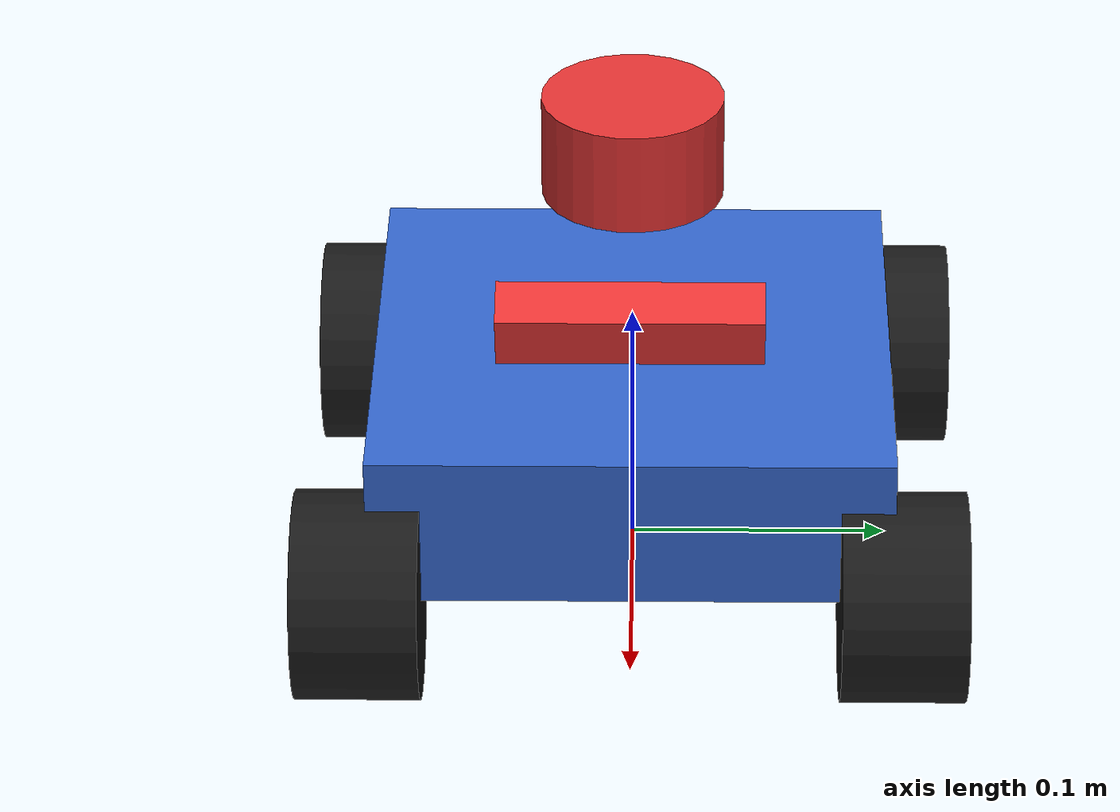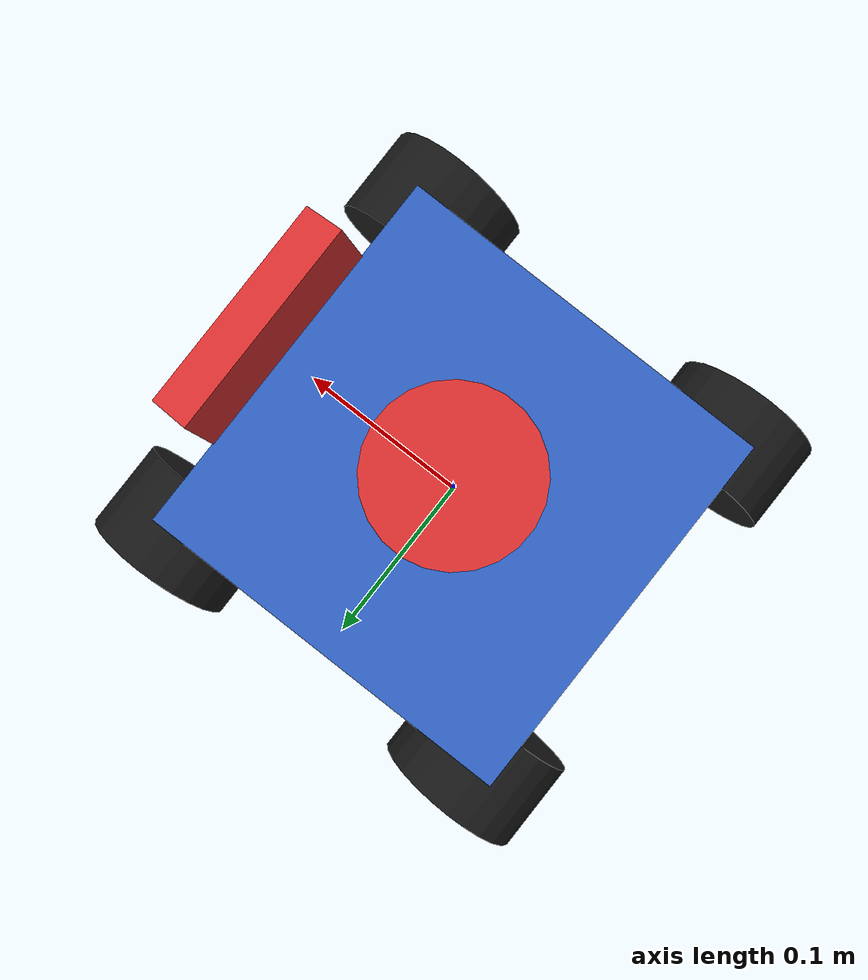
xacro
<?xml version="1.0"?>
<robot name="smart_upcare" xmlns:xacro="http://www.ros.org/wiki/xacro">

  <!--  0. 실측 오버라이드 인자 (xacro:arg)                          -->
  <!--     조립 후 실측값은 여기로만 주입 → 파일 수정 없이 교체       -->
  <!--     예) xacro smart_upcare.urdf.xacro track_width:=0.244      -->
  <!--     ★ launch에서 이 값들을 EKF/IK config와 동일 소스로 주면    -->
  <!--       URDF·footprint·기구학이 한 번에 정합됨                   -->
  <xacro:arg name="track_width"  default="0.20699"/> <!-- STEP 실측 7/29 (기존 0.250 오측) -->
  <xacro:arg name="wheelbase"    default="0.19205"/> <!-- STEP 실측 7/29 -->
  <xacro:arg name="lidar_x"      default="0.0"/>    <!-- 🔶 7/30 프린트 실측 대기 §1-3 (예상 0.161) -->
  <xacro:arg name="lidar_y"      default="0.0"/>
  <xacro:arg name="lidar_height" default="0.175"/>  <!-- 🔶 7/30 실측 대기 §1-2 (예상 0.1725) -->
  <xacro:arg name="lidar_yaw"    default="0.6217"/> <!-- 35.62° 확정. ★ 실제 장착은 35.62°+90°×k (k=0~3). 0°는 후보 아님 §3 -->
  <xacro:arg name="camera_x"     default="0.10"/>   <!-- 🔶 7/30 실측 대기 §1-3 -->
  <xacro:arg name="camera_tilt"  default="0.349"/>  <!-- 하향 틸트 rad (20°, 범위 15~30° §1-3) -->

  <!--  0-B. 시뮬 전용 센서 부하 인자 (7/31 추가)                     -->
  <!--       publisher 는 통째로 무시하므로, 이 값을 어떻게 바꾸든    -->
  <!--       젯슨의 실제 A2M12 / D415 동작에는 영향이 없다.           -->
  <!--       링크·조인트·TF 구조도 건드리지 않는다.                   -->
  <!--     배경: VirtualBox(llvmpipe 소프트웨어 렌더링)에서 측정      -->
  <!--       월드만            → 약 18 FPS                           -->
  <!--       + 로봇/센서 전체  → 7 FPS, RTF 0.50                     -->
  <!--       LiDAR(CPU 레이캐스팅)는 물리 스레드를, 뎁스 카메라       -->
  <!--       (소프트웨어 렌더)는 렌더 스레드를 각각 잡아먹는다.       -->
  <!--     원복/상향 방법:                                           -->
  <!--       xacro ... lidar_samples:=1600 camera_enabled:=true      -->
  <!--       (spawn.launch.py 의 동명 launch 인자로도 전달 가능)      -->
  <xacro:arg name="lidar_samples"  default="360"/>   <!-- 실물 A2M12 ~3200. 시뮬은 1도 간격이면 slam_toolbox 충분 -->
  <xacro:arg name="lidar_rate"     default="10"/>    <!-- Hz -->
  <xacro:arg name="camera_enabled" default="false"/> <!-- 시뮬 뎁스카메라 on/off. 연구트랙에서 필요할 때 true -->
  <xacro:arg name="camera_width"   default="212"/>
  <xacro:arg name="camera_height"  default="120"/>
  <xacro:arg name="camera_rate"    default="3"/>     <!-- Hz. 0.3 m/s 주행에는 3Hz면 충분 -->
  <xacro:arg name="imu_rate"       default="100"/>   <!-- Hz. 기존값 유지. CPU 부족 시 50으로 -->

  <!--  1. 값 모음 (property)                                        -->

  <!-- 섀시 (06번 문서) -->
  <xacro:property name="chassis_length" value="0.20"/>   <!-- x, 전후 -->
  <xacro:property name="chassis_width"  value="0.20"/>   <!-- y, 좌우 -->
  <xacro:property name="chassis_height" value="0.06"/>   <!-- z, 두께 -->
  <xacro:property name="chassis_mass"   value="3.0"/>    <!-- kg, 근사치 TODO §1-1 -->
  <xacro:property name="ground_clearance" value="0.021"/>

  <!-- 바퀴 (06번 문서) -->
  <xacro:property name="wheel_radius" value="0.040145"/>  <!-- 지름 80.29mm STEP 실측 7/29 (CAD 외경, 조립 후 보정) -->
  <xacro:property name="wheel_width"  value="0.048"/>
  <xacro:property name="wheel_mass"   value="0.15"/>
  <xacro:property name="track_width"  value="$(arg track_width)"/>
  <xacro:property name="wheelbase"    value="$(arg wheelbase)"/>
  <xacro:property name="wheel_x" value="${wheelbase/2}"/>
  <xacro:property name="wheel_y" value="${track_width/2}"/>

  <!-- 리프트 상판 (STL 측정값) -->
  <xacro:property name="platform_x" value="0.299"/>
  <xacro:property name="platform_y" value="0.186"/>
  <xacro:property name="lift_min_height" value="0.092"/>  <!-- 접힘 높이 (prismatic 원점) -->
  <xacro:property name="lift_stroke"     value="0.648"/>  <!-- 가동 스트로크 (0.092→0.740) -->

  <!-- 센서 장착 위치 (base_link 기준) — 0번 arg에서 주입 -->
  <xacro:property name="lidar_x" value="$(arg lidar_x)"/>
  <xacro:property name="lidar_y" value="$(arg lidar_y)"/>
  <!-- lidar arg는 지면(base_footprint) 기준 → base_link 기준으로 환산 -->
  <xacro:property name="lidar_z" value="${$(arg lidar_height) - (ground_clearance + wheel_radius)}"/>
  <xacro:property name="lidar_yaw" value="$(arg lidar_yaw)"/>
  <xacro:property name="camera_x" value="$(arg camera_x)"/>
  <xacro:property name="camera_tilt" value="$(arg camera_tilt)"/>

  <!--  2. 재료 색상 (시각용)                                        -->
  <material name="chassis_color"><color rgba="0.2 0.4 0.8 1.0"/></material>
  <material name="wheel_color"><color rgba="0.1 0.1 0.1 1.0"/></material>
  <material name="sensor_color"><color rgba="0.9 0.2 0.2 1.0"/></material>

  <!--  3. base_footprint → base_link                               -->
  <link name="base_footprint">
    <inertial>
      <mass value="0.001"/>
      <inertia ixx="1e-6" iyy="1e-6" izz="1e-6" ixy="0" ixz="0" iyz="0"/>
    </inertial>
  </link>

  <joint name="base_joint" type="fixed">
    <parent link="base_footprint"/>
    <child link="base_link"/>
    <origin xyz="0 0 ${ground_clearance + wheel_radius}" rpy="0 0 0"/>
  </joint>

  <link name="base_link">
    <visual>
      <geometry><box size="${chassis_length} ${chassis_width} ${chassis_height}"/></geometry>
      <material name="chassis_color"/>
    </visual>
    <collision>
      <geometry><box size="${chassis_length} ${chassis_width} ${chassis_height}"/></geometry>
    </collision>
    <inertial>
      <mass value="${chassis_mass}"/>
      <inertia
        ixx="${(1/12)*chassis_mass*(chassis_width*chassis_width + chassis_height*chassis_height)}"
        iyy="${(1/12)*chassis_mass*(chassis_length*chassis_length + chassis_height*chassis_height)}"
        izz="${(1/12)*chassis_mass*(chassis_length*chassis_length + chassis_width*chassis_width)}"
        ixy="0" ixz="0" iyz="0"/>
    </inertial>
  </link>

  <!--  4. 바퀴 매크로                                               -->
  <!--     planar_move가 실제 구동 담당 → 바퀴는 fixed(시각용)       -->
  <xacro:macro name="mecanum_wheel" params="name x_sign y_sign">
    <link name="wheel_${name}_link">
      <visual>
        <origin xyz="0 0 0" rpy="1.5708 0 0"/>  <!-- 원통을 눕힘: 축이 Y(바퀴 회전축) -->
        <geometry><cylinder radius="${wheel_radius}" length="${wheel_width}"/></geometry>
        <material name="wheel_color"/>
      </visual>
      <collision>
        <origin xyz="0 0 0" rpy="1.5708 0 0"/>
        <geometry><cylinder radius="${wheel_radius}" length="${wheel_width}"/></geometry>
      </collision>
      <inertial>
        <mass value="${wheel_mass}"/>
        <inertia
          ixx="${(1/12)*wheel_mass*(3*wheel_radius*wheel_radius + wheel_width*wheel_width)}"
          iyy="${(1/12)*wheel_mass*(3*wheel_radius*wheel_radius + wheel_width*wheel_width)}"
          izz="${(1/2)*wheel_mass*wheel_radius*wheel_radius}"
          ixy="0" ixz="0" iyz="0"/>
      </inertial>
    </link>
    <joint name="wheel_${name}_joint" type="fixed">
      <parent link="base_link"/>
      <child link="wheel_${name}_link"/>
      <origin xyz="${x_sign*wheel_x} ${y_sign*wheel_y} ${-chassis_height/2}" rpy="0 0 0"/>
    </joint>
  </xacro:macro>

  <xacro:mecanum_wheel name="fl" x_sign="1"  y_sign="1"/>
  <xacro:mecanum_wheel name="fr" x_sign="1"  y_sign="-1"/>
  <xacro:mecanum_wheel name="rl" x_sign="-1" y_sign="1"/>
  <xacro:mecanum_wheel name="rr" x_sign="-1" y_sign="-1"/>

  <!--  5. 센서 링크                                                 -->

  <!-- LiDAR (RPLIDAR A2M12) — base_link 고정 (전용 구조물, 리프트와 분리) -->
  <link name="lidar_link">
    <visual>
      <geometry><cylinder radius="0.035" length="0.04"/></geometry>
      <material name="sensor_color"/>
    </visual>
    <collision>
      <geometry><cylinder radius="0.035" length="0.04"/></geometry>
    </collision>
    <inertial>
      <mass value="0.1"/>
      <inertia ixx="0.0001" iyy="0.0001" izz="0.0001" ixy="0" ixz="0" iyz="0"/>
    </inertial>
  </link>
  <joint name="lidar_joint" type="fixed">
    <parent link="base_link"/>
    <child link="lidar_link"/>
    <origin xyz="${lidar_x} ${lidar_y} ${lidar_z}" rpy="0 0 ${lidar_yaw}"/>
  </joint>

  <!-- IMU (BNO055) — base_link 중심 -->
  <link name="imu_link">
    <inertial>
      <mass value="0.01"/>
      <inertia ixx="1e-6" iyy="1e-6" izz="1e-6" ixy="0" ixz="0" iyz="0"/>
    </inertial>
  </link>
  <joint name="imu_joint" type="fixed">
    <parent link="base_link"/>
    <child link="imu_link"/>
    <origin xyz="0 0 0" rpy="0 0 0"/>
  </joint>

  <!-- ★ 리프트 Dynamic TF: camera_mount_joint 를 prismatic 으로 전환 (§3)
       lift_tf_node 가 /joint_states 로 position[m]을 발행 → RSP가 이 TF를 굴림.
       원점 z = lift_min_height (접힘 높이), +z로 stroke 만큼 상승. -->
  <link name="camera_mount_link">
    <inertial>
      <mass value="0.01"/>
      <inertia ixx="1e-6" iyy="1e-6" izz="1e-6" ixy="0" ixz="0" iyz="0"/>
    </inertial>
  </link>
  <joint name="camera_mount_joint" type="prismatic">
    <parent link="base_link"/>
    <child link="camera_mount_link"/>
    <origin xyz="${camera_x} 0 ${lift_min_height}" rpy="0 0 0"/>
    <axis xyz="0 0 1"/>
    <limit lower="0.0" upper="${lift_stroke}" effort="100.0" velocity="0.1"/>
  </joint>

  <!-- 카메라 (RealSense D415) — 리프트 상단, 하향 틸트 고정 (§1-3) -->
  <link name="camera_link">
    <visual>
      <geometry><box size="0.02 0.099 0.023"/></geometry>  <!-- D415 대략 치수 -->
      <material name="sensor_color"/>
    </visual>
    <inertial>
      <mass value="0.072"/>
      <inertia ixx="1e-6" iyy="1e-6" izz="1e-6" ixy="0" ixz="0" iyz="0"/>
    </inertial>
  </link>
  <joint name="camera_joint" type="fixed">
    <parent link="camera_mount_link"/>
    <child link="camera_link"/>
    <origin xyz="0 0 0" rpy="0 ${camera_tilt} 0"/>  <!-- 하향 틸트 (pitch) -->
  </joint>

  <!-- 광학 프레임 (z-forward 광학 관례) -->
  <link name="camera_optical_link"/>
  <joint name="camera_optical_joint" type="fixed">
    <parent link="camera_link"/>
    <child link="camera_optical_link"/>
    <origin xyz="0 0 0" rpy="-1.5708 0 -1.5708"/>
  </joint>

  <!-- 6-1. 메카넘 홀로노믹 구동 (planar_move) -->
  <gazebo>
    <plugin name="planar_move" filename="libgazebo_ros_planar_move.so">
      <ros>
        <namespace>/</namespace>
        <remapping>cmd_vel:=cmd_vel_smoothed</remapping>
        <remapping>odom:=odom_raw</remapping>
      </ros>
      <odometry_frame>odom</odometry_frame>
      <robot_base_frame>base_footprint</robot_base_frame>
      <odometry_rate>30.0</odometry_rate>
      <publish_odom>true</publish_odom>
      <publish_odom_tf>false</publish_odom_tf>
    </plugin>
  </gazebo>

  <!-- 6-2. LiDAR — RPLIDAR A2M12 실제 스펙 반영 (§3) -->
  <gazebo reference="lidar_link">
    <sensor type="ray" name="a2m12">
      <pose>0 0 0 0 0 0</pose>
      <update_rate>$(arg lidar_rate)</update_rate>
      <ray>
        <scan>
          <horizontal>
            <samples>$(arg lidar_samples)</samples>
            <resolution>1</resolution>
            <min_angle>-3.14159</min_angle>
            <max_angle>3.14159</max_angle>
          </horizontal>
        </scan>
        <range>
          <min>0.2</min>
          <max>12.0</max>
          <resolution>0.01</resolution>
        </range>
      </ray>
      <plugin name="a2m12_ros" filename="libgazebo_ros_ray_sensor.so">
        <ros><remapping>~/out:=scan</remapping></ros>
        <output_type>sensor_msgs/LaserScan</output_type>
        <frame_name>lidar_link</frame_name>
      </plugin>
    </sensor>
  </gazebo>

  <xacro:if value="$(arg camera_enabled)">
    <gazebo reference="camera_link">
      <sensor type="depth" name="d415">
        <update_rate>$(arg camera_rate)</update_rate>
        <camera>
          <horizontal_fov>1.134</horizontal_fov>
          <image>
            <width>$(arg camera_width)</width>
            <height>$(arg camera_height)</height>
            <format>R8G8B8</format>
          </image>
          <clip><near>0.2</near><far>10.0</far></clip>
        </camera>
        <plugin name="d415_ros" filename="libgazebo_ros_camera.so">
          <frame_name>camera_optical_link</frame_name>
          <min_depth>0.2</min_depth>
          <max_depth>10.0</max_depth>
        </plugin>
      </sensor>
    </gazebo>
  </xacro:if>

  <!-- 6-4. IMU (BNO055) -->
  <gazebo reference="imu_link">
    <sensor type="imu" name="bno055">
      <always_on>1</always_on>
      <update_rate>$(arg imu_rate)</update_rate>
      <imu/>
      <plugin name="bno055_ros" filename="libgazebo_ros_imu_sensor.so">
        <ros><remapping>~/out:=imu/data</remapping></ros>
        <frame_name>imu_link</frame_name>
      </plugin>
    </sensor>
  </gazebo>

  <!-- 바퀴 마찰 낮게 (planar_move가 미끄러지듯 움직이게) -->
  <xacro:macro name="wheel_gazebo" params="name">
    <gazebo reference="wheel_${name}_link">
      <mu1>0.1</mu1><mu2>0.1</mu2>
    </gazebo>
  </xacro:macro>
  <xacro:wheel_gazebo name="fl"/>
  <xacro:wheel_gazebo name="fr"/>
  <xacro:wheel_gazebo name="rl"/>
  <xacro:wheel_gazebo name="rr"/>

</robot>
